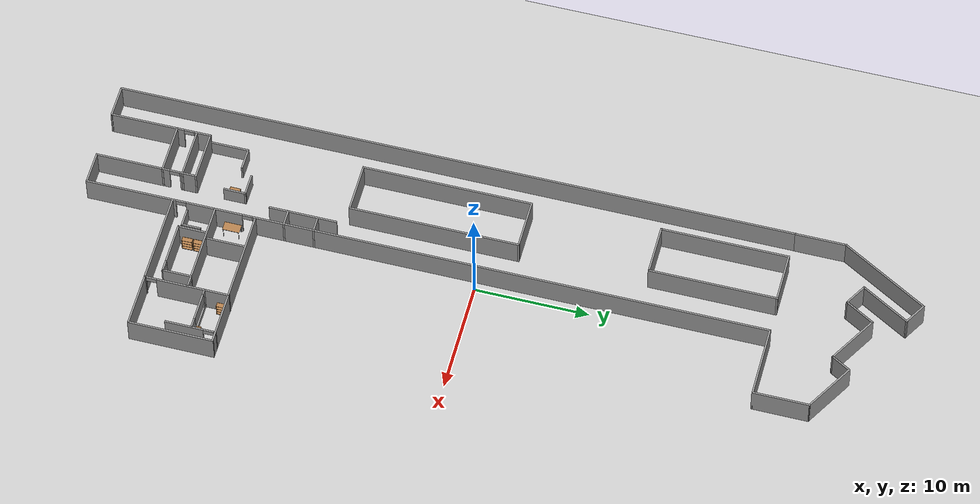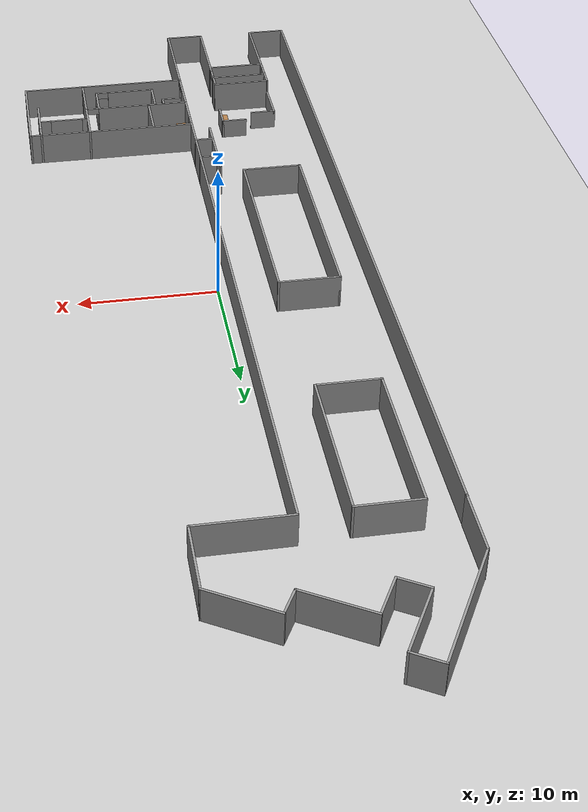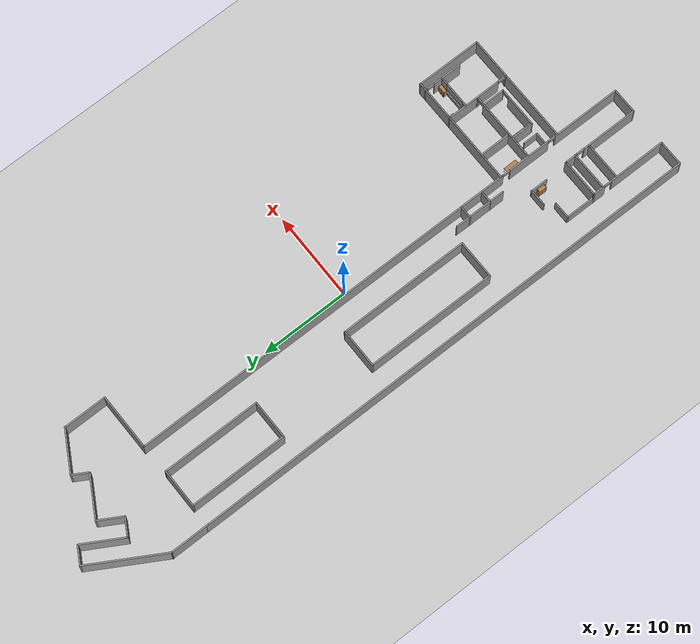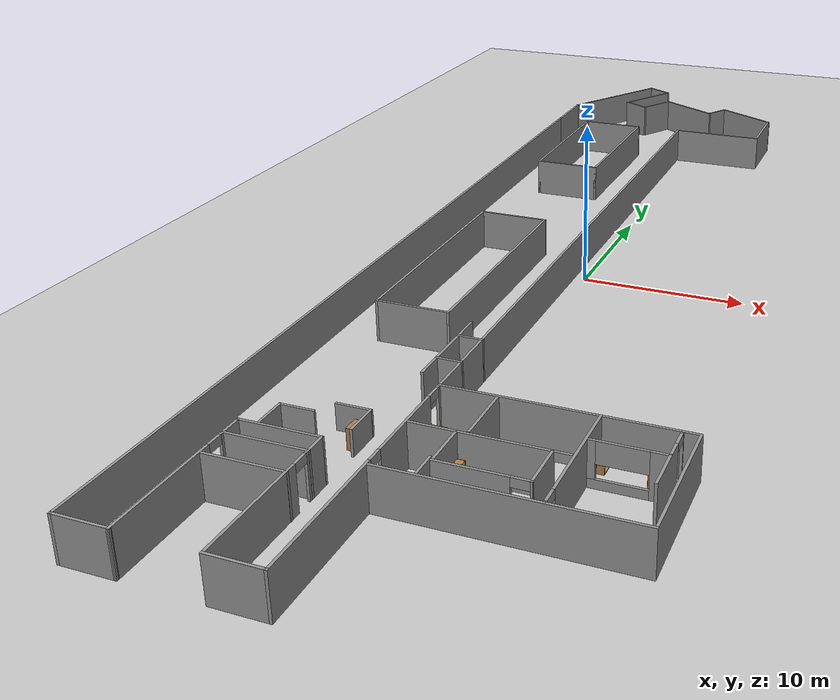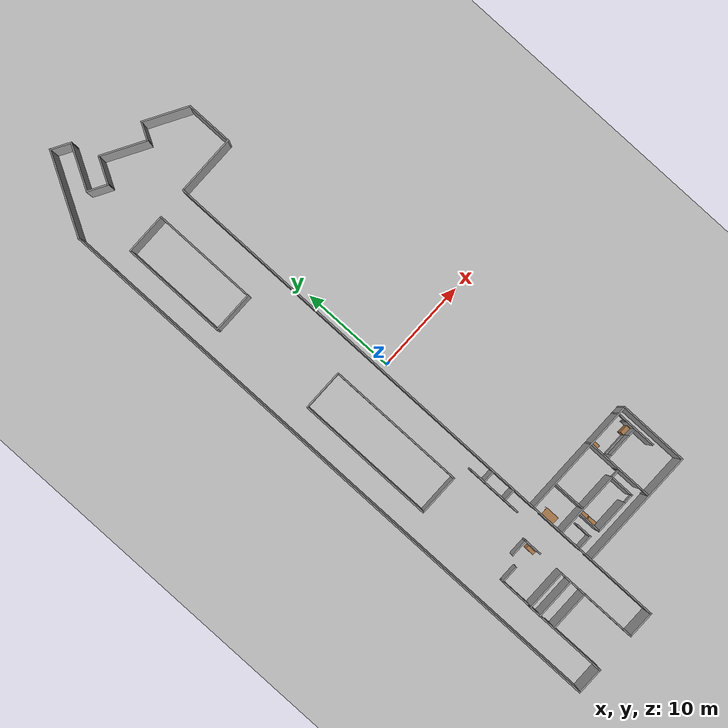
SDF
<sdf version="1.6">
 <world name="default">
  <physics type="ode">
   <max_step_size>0.001</max_step_size>
   <real_time_update_rate>1000</real_time_update_rate>
  </physics>
  <include><uri>model://sun</uri></include>
  <include><uri>model://ground_plane</uri></include>
  <include><uri>model://fei_k5__empty</uri><pose>0.621469 1.46181 0 0 -0 0</pose></include>
  <plugin name="auto_sliding_door_1" filename="libauto_sliding_door.so"><door_name>door1</door_name></plugin>
  <plugin name="auto_sliding_door_2" filename="libauto_sliding_door.so"><door_name>door2</door_name></plugin>
  <model name="table">
   <static>1</static>
   <link name="link">
    <collision name="surface">
     <pose>0 0 1 0 -0 0</pose>
     <geometry><box><size>1.5 0.8 0.03</size></box></geometry>
     <surface><friction><ode><mu>0.6</mu><mu2>0.6</mu2></ode></friction></surface>
    </collision>
    <visual name="visual1">
     <pose>0 0 1 0 -0 0</pose>
     <geometry><box><size>1.5 0.8 0.03</size></box></geometry>
     <material>
      <script><uri>file://media/materials/scripts/gazebo.material</uri><name>Gazebo/Wood</name></script>
     </material>
    </visual>
    <collision name="front_left_leg">
     <pose>0.68 0.38 0.5 0 -0 0</pose>
     <geometry><cylinder><radius>0.02</radius><length>1</length></cylinder></geometry>
    </collision>
    <visual name="front_left_leg">
     <pose>0.68 0.38 0.5 0 -0 0</pose>
     <geometry><cylinder><radius>0.02</radius><length>1</length></cylinder></geometry>
     <material>
      <script><uri>file://media/materials/scripts/gazebo.material</uri><name>Gazebo/Grey</name></script>
     </material>
    </visual>
    <collision name="front_right_leg">
     <pose>0.68 -0.38 0.5 0 -0 0</pose>
     <geometry><cylinder><radius>0.02</radius><length>1</length></cylinder></geometry>
    </collision>
    <visual name="front_right_leg">
     <pose>0.68 -0.38 0.5 0 -0 0</pose>
     <geometry><cylinder><radius>0.02</radius><length>1</length></cylinder></geometry>
     <material>
      <script><uri>file://media/materials/scripts/gazebo.material</uri><name>Gazebo/Grey</name></script>
     </material>
    </visual>
    <collision name="back_right_leg">
     <pose>-0.68 -0.38 0.5 0 -0 0</pose>
     <geometry><cylinder><radius>0.02</radius><length>1</length></cylinder></geometry>
    </collision>
    <visual name="back_right_leg">
     <pose>-0.68 -0.38 0.5 0 -0 0</pose>
     <geometry><cylinder><radius>0.02</radius><length>1</length></cylinder></geometry>
     <material>
      <script><uri>file://media/materials/scripts/gazebo.material</uri><name>Gazebo/Grey</name></script>
     </material>
    </visual>
    <collision name="back_left_leg">
     <pose>-0.68 0.38 0.5 0 -0 0</pose>
     <geometry><cylinder><radius>0.02</radius><length>1</length></cylinder></geometry>
    </collision>
    <visual name="back_left_leg">
     <pose>-0.68 0.38 0.5 0 -0 0</pose>
     <geometry><cylinder><radius>0.02</radius><length>1</length></cylinder></geometry>
     <material>
      <script><uri>file://media/materials/scripts/gazebo.material</uri><name>Gazebo/Grey</name></script>
     </material>
    </visual>
   </link>
   <pose>-0.260512 -21.4438 0 0 -0 1.5708</pose>
  </model>
  <model name="bookshelf_clone">
   <static>1</static>
   <link name="link">
    <inertial><mass>1</mass></inertial>
    <collision name="back">
     <pose>0 0.005 0.6 0 -0 0</pose>
     <geometry><box><size>0.9 0.01 1.2</size></box></geometry>
    </collision>
    <visual name="visual1">
     <pose>0 0.005 0.6 0 -0 0</pose>
     <geometry><box><size>0.9 0.01 1.2</size></box></geometry>
     <material>
      <script><uri>file://media/materials/scripts/gazebo.material</uri><name>Gazebo/Wood</name></script>
     </material>
    </visual>
    <collision name="left_side">
     <pose>0.45 -0.195 0.6 0 -0 0</pose>
     <geometry><box><size>0.02 0.4 1.2</size></box></geometry>
    </collision>
    <visual name="visual2">
     <pose>0.45 -0.195 0.6 0 -0 0</pose>
     <geometry><box><size>0.02 0.4 1.2</size></box></geometry>
     <material>
      <script><uri>file://media/materials/scripts/gazebo.material</uri><name>Gazebo/Wood</name></script>
     </material>
    </visual>
    <collision name="right_side">
     <pose>-0.45 -0.195 0.6 0 -0 0</pose>
     <geometry><box><size>0.02 0.4 1.2</size></box></geometry>
    </collision>
    <visual name="visual3">
     <pose>-0.45 -0.195 0.6 0 -0 0</pose>
     <geometry><box><size>0.02 0.4 1.2</size></box></geometry>
     <material>
      <script><uri>file://media/materials/scripts/gazebo.material</uri><name>Gazebo/Wood</name></script>
     </material>
    </visual>
    <collision name="bottom">
     <pose>0 -0.195 0.03 0 -0 0</pose>
     <geometry><box><size>0.88 0.4 0.06</size></box></geometry>
    </collision>
    <visual name="visual4">
     <pose>0 -0.195 0.03 0 -0 0</pose>
     <geometry><box><size>0.88 0.4 0.06</size></box></geometry>
     <material>
      <script><uri>file://media/materials/scripts/gazebo.material</uri><name>Gazebo/Wood</name></script>
     </material>
    </visual>
    <collision name="top">
     <pose>0 -0.195 1.19 0 -0 0</pose>
     <geometry><box><size>0.88 0.4 0.02</size></box></geometry>
    </collision>
    <visual name="visual5">
     <pose>0 -0.195 1.19 0 -0 0</pose>
     <geometry><box><size>0.88 0.4 0.02</size></box></geometry>
     <material>
      <script><uri>file://media/materials/scripts/gazebo.material</uri><name>Gazebo/Wood</name></script>
     </material>
    </visual>
    <collision name="low_shelf">
     <pose>0 -0.195 0.43 0 -0 0</pose>
     <geometry><box><size>0.88 0.4 0.02</size></box></geometry>
    </collision>
    <visual name="visual6">
     <pose>0 -0.195 0.43 0 -0 0</pose>
     <geometry><box><size>0.88 0.4 0.02</size></box></geometry>
     <material>
      <script><uri>file://media/materials/scripts/gazebo.material</uri><name>Gazebo/Wood</name></script>
     </material>
    </visual>
    <collision name="high_shelf">
     <pose>0 -0.195 0.8 0 -0 0</pose>
     <geometry><box><size>0.88 0.4 0.02</size></box></geometry>
    </collision>
    <visual name="visual7">
     <pose>0 -0.195 0.8 0 -0 0</pose>
     <geometry><box><size>0.88 0.4 0.02</size></box></geometry>
     <material>
      <script><uri>file://media/materials/scripts/gazebo.material</uri><name>Gazebo/Wood</name></script>
     </material>
    </visual>
   </link>
   <pose>-3.74719 -22.2588 0 0 0 -1.59427</pose>
  </model>
  <model name="bookshelf_0">
   <static>1</static>
   <link name="link">
    <inertial><mass>1</mass></inertial>
    <collision name="back">
     <pose>0 0.005 0.6 0 -0 0</pose>
     <geometry><box><size>0.9 0.01 1.2</size></box></geometry>
    </collision>
    <visual name="visual1">
     <pose>0 0.005 0.6 0 -0 0</pose>
     <geometry><box><size>0.9 0.01 1.2</size></box></geometry>
     <material>
      <script><uri>file://media/materials/scripts/gazebo.material</uri><name>Gazebo/Wood</name></script>
     </material>
    </visual>
    <collision name="left_side">
     <pose>0.45 -0.195 0.6 0 -0 0</pose>
     <geometry><box><size>0.02 0.4 1.2</size></box></geometry>
    </collision>
    <visual name="visual2">
     <pose>0.45 -0.195 0.6 0 -0 0</pose>
     <geometry><box><size>0.02 0.4 1.2</size></box></geometry>
     <material>
      <script><uri>file://media/materials/scripts/gazebo.material</uri><name>Gazebo/Wood</name></script>
     </material>
    </visual>
    <collision name="right_side">
     <pose>-0.45 -0.195 0.6 0 -0 0</pose>
     <geometry><box><size>0.02 0.4 1.2</size></box></geometry>
    </collision>
    <visual name="visual3">
     <pose>-0.45 -0.195 0.6 0 -0 0</pose>
     <geometry><box><size>0.02 0.4 1.2</size></box></geometry>
     <material>
      <script><uri>file://media/materials/scripts/gazebo.material</uri><name>Gazebo/Wood</name></script>
     </material>
    </visual>
    <collision name="bottom">
     <pose>0 -0.195 0.03 0 -0 0</pose>
     <geometry><box><size>0.88 0.4 0.06</size></box></geometry>
    </collision>
    <visual name="visual4">
     <pose>0 -0.195 0.03 0 -0 0</pose>
     <geometry><box><size>0.88 0.4 0.06</size></box></geometry>
     <material>
      <script><uri>file://media/materials/scripts/gazebo.material</uri><name>Gazebo/Wood</name></script>
     </material>
    </visual>
    <collision name="top">
     <pose>0 -0.195 1.19 0 -0 0</pose>
     <geometry><box><size>0.88 0.4 0.02</size></box></geometry>
    </collision>
    <visual name="visual5">
     <pose>0 -0.195 1.19 0 -0 0</pose>
     <geometry><box><size>0.88 0.4 0.02</size></box></geometry>
     <material>
      <script><uri>file://media/materials/scripts/gazebo.material</uri><name>Gazebo/Wood</name></script>
     </material>
    </visual>
    <collision name="low_shelf">
     <pose>0 -0.195 0.43 0 -0 0</pose>
     <geometry><box><size>0.88 0.4 0.02</size></box></geometry>
    </collision>
    <visual name="visual6">
     <pose>0 -0.195 0.43 0 -0 0</pose>
     <geometry><box><size>0.88 0.4 0.02</size></box></geometry>
     <material>
      <script><uri>file://media/materials/scripts/gazebo.material</uri><name>Gazebo/Wood</name></script>
     </material>
    </visual>
    <collision name="high_shelf">
     <pose>0 -0.195 0.8 0 -0 0</pose>
     <geometry><box><size>0.88 0.4 0.02</size></box></geometry>
    </collision>
    <visual name="visual7">
     <pose>0 -0.195 0.8 0 -0 0</pose>
     <geometry><box><size>0.88 0.4 0.02</size></box></geometry>
     <material>
      <script><uri>file://media/materials/scripts/gazebo.material</uri><name>Gazebo/Wood</name></script>
     </material>
    </visual>
   </link>
   <pose>10.6702 -21.4467 0 0 -0 3.10949</pose>
  </model>
  <model name="bookshelf_1">
   <static>1</static>
   <link name="link">
    <inertial><mass>1</mass></inertial>
    <collision name="back">
     <pose>0 0.005 0.6 0 -0 0</pose>
     <geometry><box><size>0.9 0.01 1.2</size></box></geometry>
    </collision>
    <visual name="visual1">
     <pose>0 0.005 0.6 0 -0 0</pose>
     <geometry><box><size>0.9 0.01 1.2</size></box></geometry>
     <material>
      <script><uri>file://media/materials/scripts/gazebo.material</uri><name>Gazebo/Wood</name></script>
     </material>
    </visual>
    <collision name="left_side">
     <pose>0.45 -0.195 0.6 0 -0 0</pose>
     <geometry><box><size>0.02 0.4 1.2</size></box></geometry>
    </collision>
    <visual name="visual2">
     <pose>0.45 -0.195 0.6 0 -0 0</pose>
     <geometry><box><size>0.02 0.4 1.2</size></box></geometry>
     <material>
      <script><uri>file://media/materials/scripts/gazebo.material</uri><name>Gazebo/Wood</name></script>
     </material>
    </visual>
    <collision name="right_side">
     <pose>-0.45 -0.195 0.6 0 -0 0</pose>
     <geometry><box><size>0.02 0.4 1.2</size></box></geometry>
    </collision>
    <visual name="visual3">
     <pose>-0.45 -0.195 0.6 0 -0 0</pose>
     <geometry><box><size>0.02 0.4 1.2</size></box></geometry>
     <material>
      <script><uri>file://media/materials/scripts/gazebo.material</uri><name>Gazebo/Wood</name></script>
     </material>
    </visual>
    <collision name="bottom">
     <pose>0 -0.195 0.03 0 -0 0</pose>
     <geometry><box><size>0.88 0.4 0.06</size></box></geometry>
    </collision>
    <visual name="visual4">
     <pose>0 -0.195 0.03 0 -0 0</pose>
     <geometry><box><size>0.88 0.4 0.06</size></box></geometry>
     <material>
      <script><uri>file://media/materials/scripts/gazebo.material</uri><name>Gazebo/Wood</name></script>
     </material>
    </visual>
    <collision name="top">
     <pose>0 -0.195 1.19 0 -0 0</pose>
     <geometry><box><size>0.88 0.4 0.02</size></box></geometry>
    </collision>
    <visual name="visual5">
     <pose>0 -0.195 1.19 0 -0 0</pose>
     <geometry><box><size>0.88 0.4 0.02</size></box></geometry>
     <material>
      <script><uri>file://media/materials/scripts/gazebo.material</uri><name>Gazebo/Wood</name></script>
     </material>
    </visual>
    <collision name="low_shelf">
     <pose>0 -0.195 0.43 0 -0 0</pose>
     <geometry><box><size>0.88 0.4 0.02</size></box></geometry>
    </collision>
    <visual name="visual6">
     <pose>0 -0.195 0.43 0 -0 0</pose>
     <geometry><box><size>0.88 0.4 0.02</size></box></geometry>
     <material>
      <script><uri>file://media/materials/scripts/gazebo.material</uri><name>Gazebo/Wood</name></script>
     </material>
    </visual>
    <collision name="high_shelf">
     <pose>0 -0.195 0.8 0 -0 0</pose>
     <geometry><box><size>0.88 0.4 0.02</size></box></geometry>
    </collision>
    <visual name="visual7">
     <pose>0 -0.195 0.8 0 -0 0</pose>
     <geometry><box><size>0.88 0.4 0.02</size></box></geometry>
     <material>
      <script><uri>file://media/materials/scripts/gazebo.material</uri><name>Gazebo/Wood</name></script>
     </material>
    </visual>
   </link>
   <pose>7.53357 -19.9776 0 0 -0 1.54853</pose>
  </model>
  <model name="bookshelf_2">
   <static>1</static>
   <link name="link">
    <inertial><mass>1</mass></inertial>
    <collision name="back">
     <pose>0 0.005 0.6 0 -0 0</pose>
     <geometry><box><size>0.9 0.01 1.2</size></box></geometry>
    </collision>
    <visual name="visual1">
     <pose>0 0.005 0.6 0 -0 0</pose>
     <geometry><box><size>0.9 0.01 1.2</size></box></geometry>
     <material>
      <script><uri>file://media/materials/scripts/gazebo.material</uri><name>Gazebo/Wood</name></script>
     </material>
    </visual>
    <collision name="left_side">
     <pose>0.45 -0.195 0.6 0 -0 0</pose>
     <geometry><box><size>0.02 0.4 1.2</size></box></geometry>
    </collision>
    <visual name="visual2">
     <pose>0.45 -0.195 0.6 0 -0 0</pose>
     <geometry><box><size>0.02 0.4 1.2</size></box></geometry>
     <material>
      <script><uri>file://media/materials/scripts/gazebo.material</uri><name>Gazebo/Wood</name></script>
     </material>
    </visual>
    <collision name="right_side">
     <pose>-0.45 -0.195 0.6 0 -0 0</pose>
     <geometry><box><size>0.02 0.4 1.2</size></box></geometry>
    </collision>
    <visual name="visual3">
     <pose>-0.45 -0.195 0.6 0 -0 0</pose>
     <geometry><box><size>0.02 0.4 1.2</size></box></geometry>
     <material>
      <script><uri>file://media/materials/scripts/gazebo.material</uri><name>Gazebo/Wood</name></script>
     </material>
    </visual>
    <collision name="bottom">
     <pose>0 -0.195 0.03 0 -0 0</pose>
     <geometry><box><size>0.88 0.4 0.06</size></box></geometry>
    </collision>
    <visual name="visual4">
     <pose>0 -0.195 0.03 0 -0 0</pose>
     <geometry><box><size>0.88 0.4 0.06</size></box></geometry>
     <material>
      <script><uri>file://media/materials/scripts/gazebo.material</uri><name>Gazebo/Wood</name></script>
     </material>
    </visual>
    <collision name="top">
     <pose>0 -0.195 1.19 0 -0 0</pose>
     <geometry><box><size>0.88 0.4 0.02</size></box></geometry>
    </collision>
    <visual name="visual5">
     <pose>0 -0.195 1.19 0 -0 0</pose>
     <geometry><box><size>0.88 0.4 0.02</size></box></geometry>
     <material>
      <script><uri>file://media/materials/scripts/gazebo.material</uri><name>Gazebo/Wood</name></script>
     </material>
    </visual>
    <collision name="low_shelf">
     <pose>0 -0.195 0.43 0 -0 0</pose>
     <geometry><box><size>0.88 0.4 0.02</size></box></geometry>
    </collision>
    <visual name="visual6">
     <pose>0 -0.195 0.43 0 -0 0</pose>
     <geometry><box><size>0.88 0.4 0.02</size></box></geometry>
     <material>
      <script><uri>file://media/materials/scripts/gazebo.material</uri><name>Gazebo/Wood</name></script>
     </material>
    </visual>
    <collision name="high_shelf">
     <pose>0 -0.195 0.8 0 -0 0</pose>
     <geometry><box><size>0.88 0.4 0.02</size></box></geometry>
    </collision>
    <visual name="visual7">
     <pose>0 -0.195 0.8 0 -0 0</pose>
     <geometry><box><size>0.88 0.4 0.02</size></box></geometry>
     <material>
      <script><uri>file://media/materials/scripts/gazebo.material</uri><name>Gazebo/Wood</name></script>
     </material>
    </visual>
   </link>
   <pose>1.85213 -24.7211 0 0 -0 1.58503</pose>
  </model>
  <model name="bookshelf_3">
   <static>1</static>
   <link name="link">
    <inertial><mass>1</mass></inertial>
    <collision name="back">
     <pose>0 0.005 0.6 0 -0 0</pose>
     <geometry><box><size>0.9 0.01 1.2</size></box></geometry>
    </collision>
    <visual name="visual1">
     <pose>0 0.005 0.6 0 -0 0</pose>
     <geometry><box><size>0.9 0.01 1.2</size></box></geometry>
     <material>
      <script><uri>file://media/materials/scripts/gazebo.material</uri><name>Gazebo/Wood</name></script>
     </material>
    </visual>
    <collision name="left_side">
     <pose>0.45 -0.195 0.6 0 -0 0</pose>
     <geometry><box><size>0.02 0.4 1.2</size></box></geometry>
    </collision>
    <visual name="visual2">
     <pose>0.45 -0.195 0.6 0 -0 0</pose>
     <geometry><box><size>0.02 0.4 1.2</size></box></geometry>
     <material>
      <script><uri>file://media/materials/scripts/gazebo.material</uri><name>Gazebo/Wood</name></script>
     </material>
    </visual>
    <collision name="right_side">
     <pose>-0.45 -0.195 0.6 0 -0 0</pose>
     <geometry><box><size>0.02 0.4 1.2</size></box></geometry>
    </collision>
    <visual name="visual3">
     <pose>-0.45 -0.195 0.6 0 -0 0</pose>
     <geometry><box><size>0.02 0.4 1.2</size></box></geometry>
     <material>
      <script><uri>file://media/materials/scripts/gazebo.material</uri><name>Gazebo/Wood</name></script>
     </material>
    </visual>
    <collision name="bottom">
     <pose>0 -0.195 0.03 0 -0 0</pose>
     <geometry><box><size>0.88 0.4 0.06</size></box></geometry>
    </collision>
    <visual name="visual4">
     <pose>0 -0.195 0.03 0 -0 0</pose>
     <geometry><box><size>0.88 0.4 0.06</size></box></geometry>
     <material>
      <script><uri>file://media/materials/scripts/gazebo.material</uri><name>Gazebo/Wood</name></script>
     </material>
    </visual>
    <collision name="top">
     <pose>0 -0.195 1.19 0 -0 0</pose>
     <geometry><box><size>0.88 0.4 0.02</size></box></geometry>
    </collision>
    <visual name="visual5">
     <pose>0 -0.195 1.19 0 -0 0</pose>
     <geometry><box><size>0.88 0.4 0.02</size></box></geometry>
     <material>
      <script><uri>file://media/materials/scripts/gazebo.material</uri><name>Gazebo/Wood</name></script>
     </material>
    </visual>
    <collision name="low_shelf">
     <pose>0 -0.195 0.43 0 -0 0</pose>
     <geometry><box><size>0.88 0.4 0.02</size></box></geometry>
    </collision>
    <visual name="visual6">
     <pose>0 -0.195 0.43 0 -0 0</pose>
     <geometry><box><size>0.88 0.4 0.02</size></box></geometry>
     <material>
      <script><uri>file://media/materials/scripts/gazebo.material</uri><name>Gazebo/Wood</name></script>
     </material>
    </visual>
    <collision name="high_shelf">
     <pose>0 -0.195 0.8 0 -0 0</pose>
     <geometry><box><size>0.88 0.4 0.02</size></box></geometry>
    </collision>
    <visual name="visual7">
     <pose>0 -0.195 0.8 0 -0 0</pose>
     <geometry><box><size>0.88 0.4 0.02</size></box></geometry>
     <material>
      <script><uri>file://media/materials/scripts/gazebo.material</uri><name>Gazebo/Wood</name></script>
     </material>
    </visual>
   </link>
   <pose>1.85241 -23.7046 0 0 -0 1.56923</pose>
  </model>
 </world>
</sdf>
